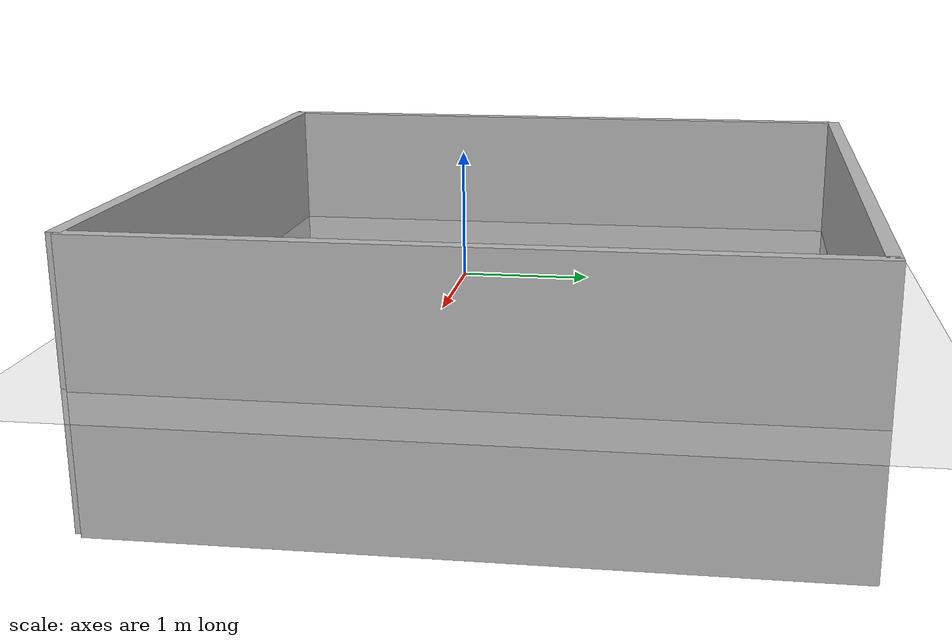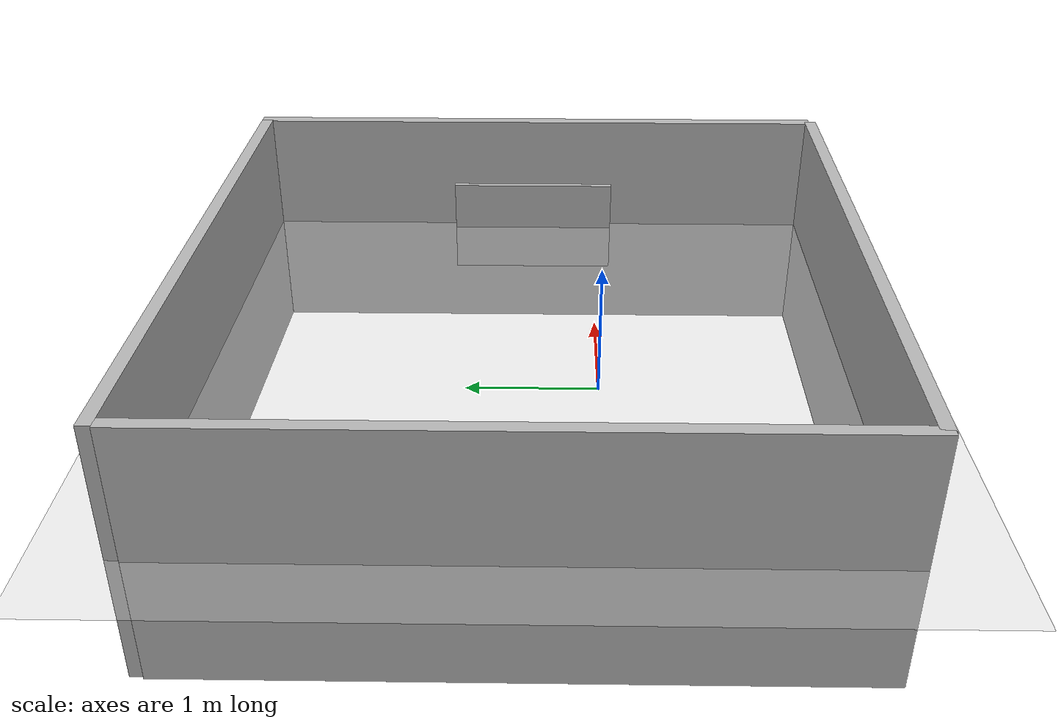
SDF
<sdf version="1.10">
 <world name="empty">
  <physics name="default_physics" default="true" type="ode">
   <max_step_size>0.001</max_step_size>
   <real_time_factor>1</real_time_factor>
   <real_time_update_rate>1000</real_time_update_rate>
  </physics>
  <plugin name="gz::sim::systems::Physics" filename="gz-sim-physics-system"/>
  <plugin name="gz::sim::systems::UserCommands" filename="gz-sim-user-commands-system"/>
  <plugin name="gz::sim::systems::SceneBroadcaster" filename="gz-sim-scene-broadcaster-system"/>
  <plugin name="gz::sim::systems::Sensors" filename="gz-sim-sensors-system">
   <render_engine>ogre2</render_engine>
  </plugin>
  <plugin name="gz::sim::systems::Contact" filename="gz-sim-contact-system"/>
  <gravity>0 0 -9.8000000000000007</gravity>
  <magnetic_field>5.5644999999999998e-06 2.2875799999999999e-05 -4.2388400000000002e-05</magnetic_field>
  <atmosphere type="adiabatic"/>
  <scene>
   <ambient>0.400000006 0.400000006 0.400000006 1</ambient>
   <background>0.699999988 0.699999988 0.699999988 1</background>
   <shadows>true</shadows>
  </scene>
  <model name="ground_plane">
   <static>true</static>
   <link name="link">
    <collision name="collision">
     <geometry><plane><normal>0 0 1</normal><size>100 100</size></plane></geometry>
    </collision>
    <visual name="visual">
     <geometry><plane><normal>0 0 1</normal><size>100 100</size></plane></geometry>
     <material>
      <ambient>0.800000012 0.800000012 0.800000012 1</ambient>
      <diffuse>0.800000012 0.800000012 0.800000012 1</diffuse>
      <specular>0.800000012 0.800000012 0.800000012 1</specular>
     </material>
    </visual>
    <inertial>
     <mass>1</mass>
     <inertia><ixx>1</ixx><ixy>0</ixy><ixz>0</ixz><iyy>1</iyy><iyz>0</iyz><izz>1</izz></inertia>
    </inertial>
   </link>
  </model>
  <model name="room_wall_2x5m">
   <link name="link">
    <visual name="visual">
     <geometry><box><size>0.10000000000000001 5 2</size></box></geometry>
     <material>
      <script>
       <uri>https://fuel.gazebosim.org/1.0/makerspet/models/room_wall_2x5m/1/files/material/script</uri>
       <uri>https://fuel.gazebosim.org/1.0/makerspet/models/room_wall_2x5m/1/files/material/textures</uri>
       <name>Custom/room_wall_2x5m</name>
      </script>
     </material>
    </visual>
    <collision name="collision"><geometry><box><size>0.10000000000000001 5 2</size></box></geometry></collision>
    <inertial>
     <mass>1</mass>
     <inertia><ixx>1</ixx><ixy>0</ixy><ixz>0</ixz><iyy>1</iyy><iyz>0</iyz><izz>1</izz></inertia>
    </inertial>
   </link>
   <static>true</static>
   <pose>3.0021046306236707 0.51356120539538497 0 0 0 0</pose>
  </model>
  <model name="room_wall_2x5m_0">
   <link name="link">
    <visual name="visual">
     <geometry><box><size>0.10000000000000001 5 2</size></box></geometry>
     <material>
      <script>
       <uri>https://fuel.gazebosim.org/1.0/makerspet/models/room_wall_2x5m/1/files/material/script</uri>
       <uri>https://fuel.gazebosim.org/1.0/makerspet/models/room_wall_2x5m/1/files/material/textures</uri>
       <name>Custom/room_wall_2x5m</name>
      </script>
     </material>
    </visual>
    <collision name="collision"><geometry><box><size>0.10000000000000001 5 2</size></box></geometry></collision>
    <inertial>
     <mass>1</mass>
     <inertia><ixx>1</ixx><ixy>0</ixy><ixz>0</ixz><iyy>1</iyy><iyz>0</iyz><izz>1</izz></inertia>
    </inertial>
   </link>
   <static>true</static>
   <pose>0.50742614269256592 -1.961226224899292 0 0 0 -1.5849199372922735</pose>
  </model>
  <model name="room_wall_2x5m_1">
   <link name="link">
    <visual name="visual">
     <geometry><box><size>0.10000000000000001 5 2</size></box></geometry>
     <material>
      <script>
       <uri>https://fuel.gazebosim.org/1.0/makerspet/models/room_wall_2x5m/1/files/material/script</uri>
       <uri>https://fuel.gazebosim.org/1.0/makerspet/models/room_wall_2x5m/1/files/material/textures</uri>
       <name>Custom/room_wall_2x5m</name>
      </script>
     </material>
    </visual>
    <collision name="collision"><geometry><box><size>0.10000000000000001 5 2</size></box></geometry></collision>
    <inertial>
     <mass>1</mass>
     <inertia><ixx>1</ixx><ixy>0</ixy><ixz>0</ixz><iyy>1</iyy><iyz>0</iyz><izz>1</izz></inertia>
    </inertial>
   </link>
   <static>true</static>
   <pose>0.48567593097686768 3.0232474803924561 0 0 0 -1.5941000150300249</pose>
  </model>
  <model name="tv_65in">
   <link name="link">
    <visual name="visual">
     <geometry><box><size>0.050000000000000003 1.45 0.82999999999999996</size></box></geometry>
     <material>
      <script>
       <uri>https://fuel.gazebosim.org/1.0/makerspet/models/tv_65in/1/files/material/script</uri>
       <uri>https://fuel.gazebosim.org/1.0/makerspet/models/tv_65in/1/files/material/textures</uri>
       <name>Custom/tv</name>
      </script>
     </material>
    </visual>
    <inertial>
     <mass>1</mass>
     <inertia><ixx>1</ixx><ixy>0</ixy><ixz>0</ixz><iyy>1</iyy><iyz>0</iyz><izz>1</izz></inertia>
    </inertial>
   </link>
   <static>true</static>
   <pose>2.883137924324064 0.52975129719305913 0 0 0 0</pose>
  </model>
  <model name="room_wall_2x5m_2">
   <link name="link">
    <visual name="visual">
     <geometry><box><size>0.10000000000000001 5 2</size></box></geometry>
     <material>
      <script>
       <uri>https://fuel.gazebosim.org/1.0/makerspet/models/room_wall_2x5m/1/files/material/script</uri>
       <uri>https://fuel.gazebosim.org/1.0/makerspet/models/room_wall_2x5m/1/files/material/textures</uri>
       <name>Custom/room_wall_2x5m</name>
      </script>
     </material>
    </visual>
    <collision name="collision"><geometry><box><size>0.10000000000000001 5 2</size></box></geometry></collision>
    <inertial>
     <mass>1</mass>
     <inertia><ixx>1</ixx><ixy>0</ixy><ixz>0</ixz><iyy>1</iyy><iyz>0</iyz><izz>1</izz></inertia>
    </inertial>
   </link>
   <static>true</static>
   <pose>-1.9785492973417345 0.53221742781935566 0 0 0 0</pose>
  </model>
  <light name="sun" type="directional">
   <pose>0 0 10 0 0 0</pose>
   <intensity>1</intensity>
   <direction>-0.5 0.10000000000000001 -0.90000000000000002</direction>
   <diffuse>0.800000012 0.800000012 0.800000012 1</diffuse>
   <specular>0.200000003 0.200000003 0.200000003 1</specular>
   <attenuation>
    <range>1000</range>
    <linear>0.01</linear>
    <constant>0.90000000000000002</constant>
    <quadratic>0.001</quadratic>
   </attenuation>
   <spot><inner_angle>0</inner_angle><outer_angle>0</outer_angle><falloff>0</falloff></spot>
  </light>
 </world>
</sdf>
